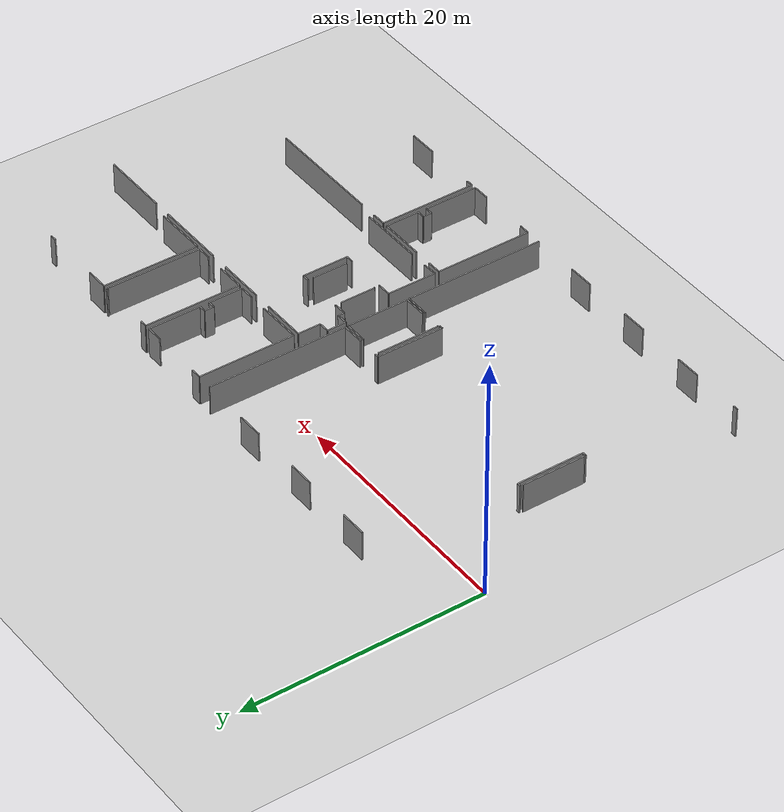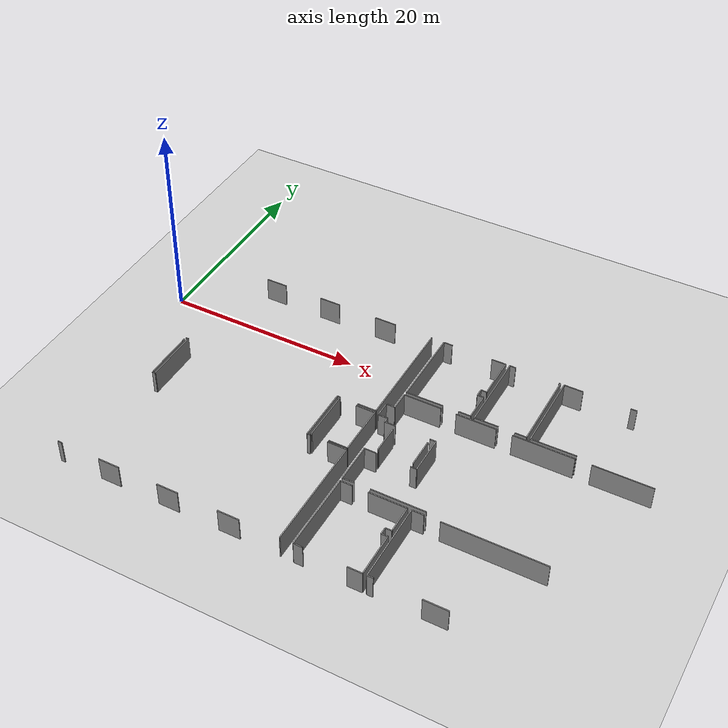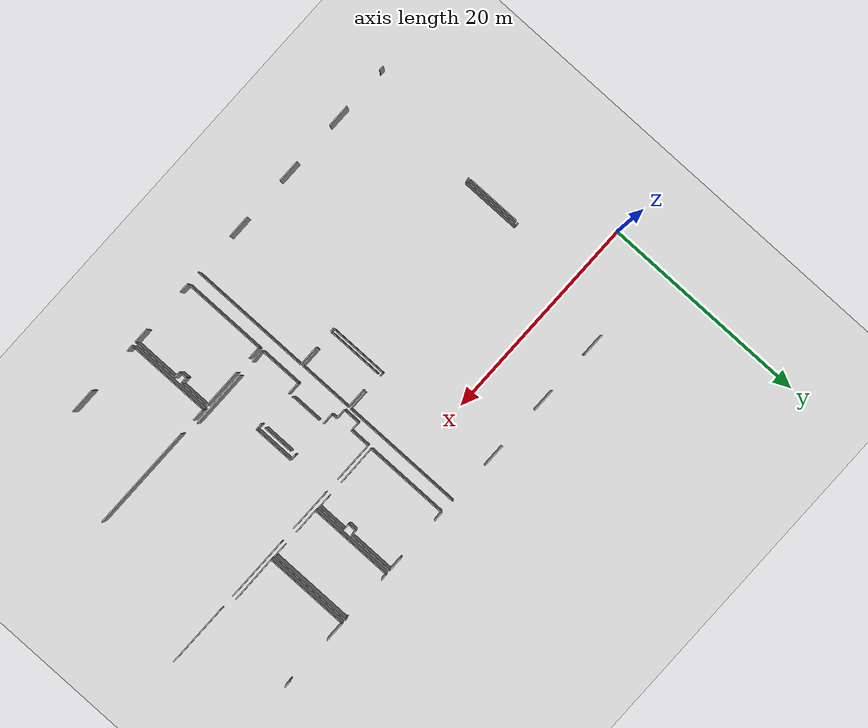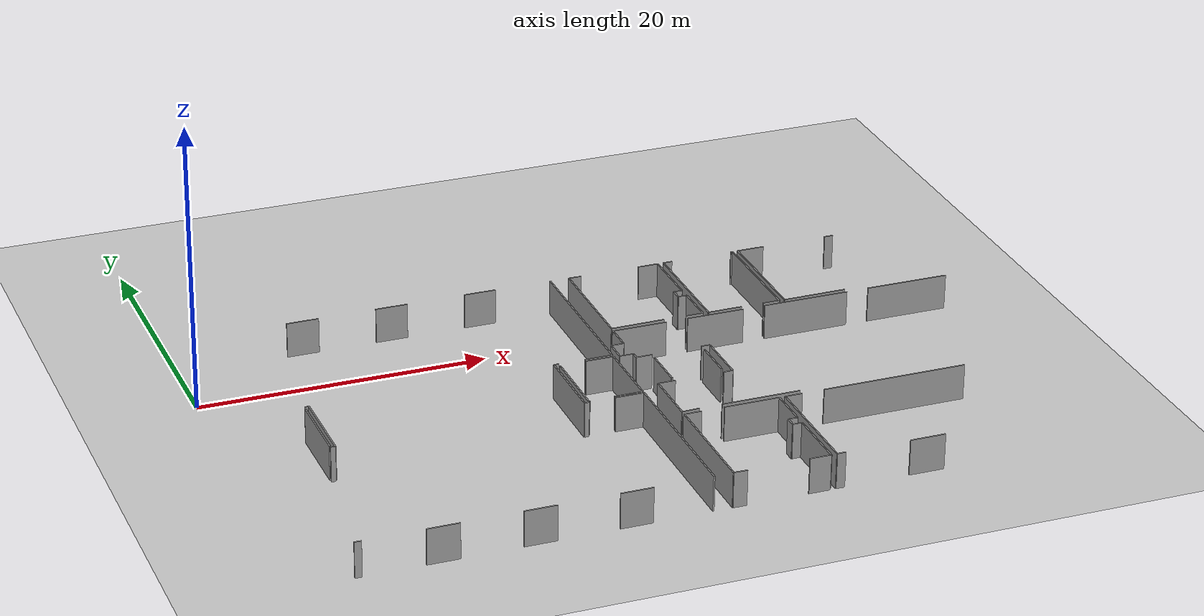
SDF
<sdf version="1.6">
 <world name="default">
  <model name="ground_plane">
   <static>1</static>
   <link name="link">
    <collision name="collision">
     <geometry><plane><normal>0 0 1</normal><size>100 100</size></plane></geometry>
     <surface><friction><ode><mu>100</mu><mu2>50</mu2></ode></friction></surface>
    </collision>
    <visual name="visual">
     <cast_shadows>0</cast_shadows>
     <geometry><plane><normal>0 0 1</normal><size>100 100</size></plane></geometry>
     <material>
      <script><uri>file://media/materials/scripts/gazebo.material</uri><name>Gazebo/Grey</name></script>
     </material>
    </visual>
   </link>
  </model>
  <model name="0510035341_A_40_1_103">
   <static>1</static>
   <link name="Wall_190">
    <collision name="Wall_190_Collision">
     <geometry><box><size>5.22303345819 0.1 2.5</size></box></geometry>
     <pose>2.6115167291 0 1.25 0 0 0</pose>
    </collision>
    <visual name="Wall_190_Visual">
     <pose>2.6115167291 0 1.25 0 0 0</pose>
     <geometry><box><size>5.22303345819 0.1 2.5</size></box></geometry>
     <material>
      <script><uri>file://media/materials/scripts/gazebo.material</uri><name>Gazebo/Grey</name></script>
      <ambient>1 1 1 1</ambient>
     </material>
    </visual>
    <pose>118.19135293 -31.0911053266 0 0 0 -1.57079632679</pose>
   </link>
   <link name="Wall_193">
    <collision name="Wall_193_Collision">
     <geometry><box><size>0.32836010412 0.1 2.5</size></box></geometry>
     <pose>0.16418005206 0 1.25 0 0 0</pose>
    </collision>
    <visual name="Wall_193_Visual">
     <pose>0.16418005206 0 1.25 0 0 0</pose>
     <geometry><box><size>0.32836010412 0.1 2.5</size></box></geometry>
     <material>
      <script><uri>file://media/materials/scripts/gazebo.material</uri><name>Gazebo/Grey</name></script>
      <ambient>1 1 1 1</ambient>
     </material>
    </visual>
    <pose>118.179163228 -36.4789537172 0 0 0 0.0</pose>
   </link>
   <link name="Wall_194">
    <collision name="Wall_194_Collision">
     <geometry><box><size>5.61259602565 0.1 2.5</size></box></geometry>
     <pose>2.80629801282 0 1.25 0 0 0</pose>
    </collision>
    <visual name="Wall_194_Visual">
     <pose>2.80629801282 0 1.25 0 0 0</pose>
     <geometry><box><size>5.61259602565 0.1 2.5</size></box></geometry>
     <material>
      <script><uri>file://media/materials/scripts/gazebo.material</uri><name>Gazebo/Grey</name></script>
      <ambient>1 1 1 1</ambient>
     </material>
    </visual>
    <pose>118.507523332 -36.4789537172 0 0 0 1.57079632679</pose>
   </link>
   <link name="Wall_195">
    <collision name="Wall_195_Collision">
     <geometry><box><size>0.290521236747 0.1 2.5</size></box></geometry>
     <pose>0.145260618373 0 1.25 0 0 0</pose>
    </collision>
    <visual name="Wall_195_Visual">
     <pose>0.145260618373 0 1.25 0 0 0</pose>
     <geometry><box><size>0.290521236747 0.1 2.5</size></box></geometry>
     <material>
      <script><uri>file://media/materials/scripts/gazebo.material</uri><name>Gazebo/Grey</name></script>
      <ambient>1 1 1 1</ambient>
     </material>
    </visual>
    <pose>118.507523332 -30.8663576916 0 0 0 3.14159265359</pose>
   </link>
   <link name="Wall_198">
    <collision name="Wall_198_Collision">
     <geometry><box><size>2.23401688782 0.1 2.5</size></box></geometry>
     <pose>1.11700844391 0 1.25 0 0 0</pose>
    </collision>
    <visual name="Wall_198_Visual">
     <pose>1.11700844391 0 1.25 0 0 0</pose>
     <geometry><box><size>2.23401688782 0.1 2.5</size></box></geometry>
     <material>
      <script><uri>file://media/materials/scripts/gazebo.material</uri><name>Gazebo/Grey</name></script>
      <ambient>1 1 1 1</ambient>
     </material>
    </visual>
    <pose>120.496730366 -19.25007936 0 0 0 0.0</pose>
   </link>
   <link name="Wall_199">
    <collision name="Wall_199_Collision">
     <geometry><box><size>2.23401688782 0.1 2.5</size></box></geometry>
     <pose>1.11700844391 0 1.25 0 0 0</pose>
    </collision>
    <visual name="Wall_199_Visual">
     <pose>1.11700844391 0 1.25 0 0 0</pose>
     <geometry><box><size>2.23401688782 0.1 2.5</size></box></geometry>
     <material>
      <script><uri>file://media/materials/scripts/gazebo.material</uri><name>Gazebo/Grey</name></script>
      <ambient>1 1 1 1</ambient>
     </material>
    </visual>
    <pose>126.759697797 -19.25007936 0 0 0 0.0</pose>
   </link>
   <link name="Wall_200">
    <collision name="Wall_200_Collision">
     <geometry><box><size>2.22893784522 0.1 2.5</size></box></geometry>
     <pose>1.11446892261 0 1.25 0 0 0</pose>
    </collision>
    <visual name="Wall_200_Visual">
     <pose>1.11446892261 0 1.25 0 0 0</pose>
     <geometry><box><size>2.22893784522 0.1 2.5</size></box></geometry>
     <material>
      <script><uri>file://media/materials/scripts/gazebo.material</uri><name>Gazebo/Grey</name></script>
      <ambient>1 1 1 1</ambient>
     </material>
    </visual>
    <pose>133.081582122 -19.25007936 0 0 0 0.0</pose>
   </link>
   <link name="Wall_201">
    <collision name="Wall_201_Collision">
     <geometry><box><size>11.6365945019 0.1 2.5</size></box></geometry>
     <pose>5.81829725097 0 1.25 0 0 0</pose>
    </collision>
    <visual name="Wall_201_Visual">
     <pose>5.81829725097 0 1.25 0 0 0</pose>
     <geometry><box><size>11.6365945019 0.1 2.5</size></box></geometry>
     <material>
      <script><uri>file://media/materials/scripts/gazebo.material</uri><name>Gazebo/Grey</name></script>
      <ambient>1 1 1 1</ambient>
     </material>
    </visual>
    <pose>139.317630627 -19.25007936 0 0 0 -1.57079632679</pose>
   </link>
   <link name="Wall_202">
    <collision name="Wall_202_Collision">
     <geometry><box><size>1.90413307092 0.1 2.5</size></box></geometry>
     <pose>0.952066535458 0 1.25 0 0 0</pose>
    </collision>
    <visual name="Wall_202_Visual">
     <pose>0.952066535458 0 1.25 0 0 0</pose>
     <geometry><box><size>1.90413307092 0.1 2.5</size></box></geometry>
     <material>
      <script><uri>file://media/materials/scripts/gazebo.material</uri><name>Gazebo/Grey</name></script>
      <ambient>1 1 1 1</ambient>
     </material>
    </visual>
    <pose>139.317630627 -30.886673862 0 0 0 3.14159265359</pose>
   </link>
   <link name="Wall_203">
    <collision name="Wall_203_Collision">
     <geometry><box><size>0.340803758492 0.1 2.5</size></box></geometry>
     <pose>0.170401879246 0 1.25 0 0 0</pose>
    </collision>
    <visual name="Wall_203_Visual">
     <pose>0.170401879246 0 1.25 0 0 0</pose>
     <geometry><box><size>0.340803758492 0.1 2.5</size></box></geometry>
     <material>
      <script><uri>file://media/materials/scripts/gazebo.material</uri><name>Gazebo/Grey</name></script>
      <ambient>1 1 1 1</ambient>
     </material>
    </visual>
    <pose>135.577677608 -30.886673862 0 0 0 3.14159265359</pose>
   </link>
   <link name="Wall_204">
    <collision name="Wall_204_Collision">
     <geometry><box><size>5.59837470637 0.1 2.5</size></box></geometry>
     <pose>2.79918735318 0 1.25 0 0 0</pose>
    </collision>
    <visual name="Wall_204_Visual">
     <pose>2.79918735318 0 1.25 0 0 0</pose>
     <geometry><box><size>5.59837470637 0.1 2.5</size></box></geometry>
     <material>
      <script><uri>file://media/materials/scripts/gazebo.material</uri><name>Gazebo/Grey</name></script>
      <ambient>1 1 1 1</ambient>
     </material>
    </visual>
    <pose>135.236873849 -30.886673862 0 0 0 -1.57079632679</pose>
   </link>
   <link name="Wall_205">
    <collision name="Wall_205_Collision">
     <geometry><box><size>0.315662497619 0.1 2.5</size></box></geometry>
     <pose>0.15783124881 0 1.25 0 0 0</pose>
    </collision>
    <visual name="Wall_205_Visual">
     <pose>0.15783124881 0 1.25 0 0 0</pose>
     <geometry><box><size>0.315662497619 0.1 2.5</size></box></geometry>
     <material>
      <script><uri>file://media/materials/scripts/gazebo.material</uri><name>Gazebo/Grey</name></script>
      <ambient>1 1 1 1</ambient>
     </material>
    </visual>
    <pose>135.236873849 -36.4850485683 0 0 0 0.0</pose>
   </link>
   <link name="Wall_206">
    <collision name="Wall_206_Collision">
     <geometry><box><size>1.98412799187 0.1 2.5</size></box></geometry>
     <pose>0.992063995937 0 1.25 0 0 0</pose>
    </collision>
    <visual name="Wall_206_Visual">
     <pose>0.992063995937 0 1.25 0 0 0</pose>
     <geometry><box><size>1.98412799187 0.1 2.5</size></box></geometry>
     <material>
      <script><uri>file://media/materials/scripts/gazebo.material</uri><name>Gazebo/Grey</name></script>
      <ambient>1 1 1 1</ambient>
     </material>
    </visual>
    <pose>137.358135991 -36.4850485683 0 0 0 0.0</pose>
   </link>
   <link name="Wall_207">
    <collision name="Wall_207_Collision">
     <geometry><box><size>11.6612278585 0.1 2.5</size></box></geometry>
     <pose>5.83061392927 0 1.25 0 0 0</pose>
    </collision>
    <visual name="Wall_207_Visual">
     <pose>5.83061392927 0 1.25 0 0 0</pose>
     <geometry><box><size>11.6612278585 0.1 2.5</size></box></geometry>
     <material>
      <script><uri>file://media/materials/scripts/gazebo.material</uri><name>Gazebo/Grey</name></script>
      <ambient>1 1 1 1</ambient>
     </material>
    </visual>
    <pose>139.342263983 -36.4850485683 0 0 0 -1.57079632679</pose>
   </link>
   <link name="Wall_208">
    <collision name="Wall_208_Collision">
     <geometry><box><size>2.20024125452 0.1 2.5</size></box></geometry>
     <pose>1.10012062726 0 1.25 0 0 0</pose>
    </collision>
    <visual name="Wall_208_Visual">
     <pose>1.10012062726 0 1.25 0 0 0</pose>
     <geometry><box><size>2.20024125452 0.1 2.5</size></box></geometry>
     <material>
      <script><uri>file://media/materials/scripts/gazebo.material</uri><name>Gazebo/Grey</name></script>
      <ambient>1 1 1 1</ambient>
     </material>
    </visual>
    <pose>135.324487334 -48.1462764269 0 0 0 3.14159265359</pose>
   </link>
   <link name="Wall_209">
    <collision name="Wall_209_Collision">
     <geometry><box><size>2.18322646181 0.1 2.5</size></box></geometry>
     <pose>1.09161323091 0 1.25 0 0 0</pose>
    </collision>
    <visual name="Wall_209_Visual">
     <pose>1.09161323091 0 1.25 0 0 0</pose>
     <geometry><box><size>2.18322646181 0.1 2.5</size></box></geometry>
     <material>
      <script><uri>file://media/materials/scripts/gazebo.material</uri><name>Gazebo/Grey</name></script>
      <ambient>1 1 1 1</ambient>
     </material>
    </visual>
    <pose>129.014792712 -48.1462764269 0 0 0 3.14159265359</pose>
   </link>
   <link name="Wall_210">
    <collision name="Wall_210_Collision">
     <geometry><box><size>2.18348041394 0.1 2.5</size></box></geometry>
     <pose>1.09174020697 0 1.25 0 0 0</pose>
    </collision>
    <visual name="Wall_210_Visual">
     <pose>1.09174020697 0 1.25 0 0 0</pose>
     <geometry><box><size>2.18348041394 0.1 2.5</size></box></geometry>
     <material>
      <script><uri>file://media/materials/scripts/gazebo.material</uri><name>Gazebo/Grey</name></script>
      <ambient>1 1 1 1</ambient>
     </material>
    </visual>
    <pose>122.74700019 -48.1462764269 0 0 0 3.14159265359</pose>
   </link>
   <link name="Wall_211">
    <collision name="Wall_211_Collision">
     <geometry><box><size>0.466900573723 0.1 2.5</size></box></geometry>
     <pose>0.233450286862 0 1.25 0 0 0</pose>
    </collision>
    <visual name="Wall_211_Visual">
     <pose>0.233450286862 0 1.25 0 0 0</pose>
     <geometry><box><size>0.466900573723 0.1 2.5</size></box></geometry>
     <material>
      <script><uri>file://media/materials/scripts/gazebo.material</uri><name>Gazebo/Grey</name></script>
      <ambient>1 1 1 1</ambient>
     </material>
    </visual>
    <pose>116.479207669 -48.1462764269 0 0 0 3.07954705386</pose>
   </link>
   <link name="Wall_480">
    <collision name="Wall_480_Collision">
     <geometry><box><size>2.95549488921 0.1 2.5</size></box></geometry>
     <pose>1.47774744461 0 1.25 0 0 0</pose>
    </collision>
    <visual name="Wall_480_Visual">
     <pose>1.47774744461 0 1.25 0 0 0</pose>
     <geometry><box><size>2.95549488921 0.1 2.5</size></box></geometry>
     <material>
      <script><uri>file://media/materials/scripts/gazebo.material</uri><name>Gazebo/Grey</name></script>
      <ambient>1 1 1 1</ambient>
     </material>
    </visual>
    <pose>141.787315091 -35.1655133007 0 0 0 1.57079632679</pose>
   </link>
   <link name="Wall_481">
    <collision name="Wall_481_Collision">
     <geometry><box><size>2.94889213383 0.1 2.5</size></box></geometry>
     <pose>1.47444606692 0 1.25 0 0 0</pose>
    </collision>
    <visual name="Wall_481_Visual">
     <pose>1.47444606692 0 1.25 0 0 0</pose>
     <geometry><box><size>2.94889213383 0.1 2.5</size></box></geometry>
     <material>
      <script><uri>file://media/materials/scripts/gazebo.material</uri><name>Gazebo/Grey</name></script>
      <ambient>1 1 1 1</ambient>
     </material>
    </visual>
    <pose>145.319535268 -32.2100184115 0 0 0 -1.57079632679</pose>
   </link>
   <link name="Wall_482">
    <collision name="Wall_482_Collision">
     <geometry><box><size>0.0871022488009 0.1 2.5</size></box></geometry>
     <pose>0.0435511244004 0 1.25 0 0 0</pose>
    </collision>
    <visual name="Wall_482_Visual">
     <pose>0.0435511244004 0 1.25 0 0 0</pose>
     <geometry><box><size>0.0871022488009 0.1 2.5</size></box></geometry>
     <material>
      <script><uri>file://media/materials/scripts/gazebo.material</uri><name>Gazebo/Grey</name></script>
      <ambient>1 1 1 1</ambient>
     </material>
    </visual>
    <pose>141.87416672 -35.1589105454 0 0 0 -3.06571521646</pose>
   </link>
   <link name="Wall_483">
    <collision name="Wall_483_Collision">
     <geometry><box><size>4.107421751 0.1 2.5</size></box></geometry>
     <pose>2.0537108755 0 1.25 0 0 0</pose>
    </collision>
    <visual name="Wall_483_Visual">
     <pose>2.0537108755 0 1.25 0 0 0</pose>
     <geometry><box><size>4.107421751 0.1 2.5</size></box></geometry>
     <material>
      <script><uri>file://media/materials/scripts/gazebo.material</uri><name>Gazebo/Grey</name></script>
      <ambient>1 1 1 1</ambient>
     </material>
    </visual>
    <pose>140.658497873 -39.7209066091 0 0 0 1.57079632679</pose>
   </link>
   <link name="Wall_484">
    <collision name="Wall_484_Collision">
     <geometry><box><size>1.20728842613 0.1 2.5</size></box></geometry>
     <pose>0.603644213066 0 1.25 0 0 0</pose>
    </collision>
    <visual name="Wall_484_Visual">
     <pose>0.603644213066 0 1.25 0 0 0</pose>
     <geometry><box><size>1.20728842613 0.1 2.5</size></box></geometry>
     <material>
      <script><uri>file://media/materials/scripts/gazebo.material</uri><name>Gazebo/Grey</name></script>
      <ambient>1 1 1 1</ambient>
     </material>
    </visual>
    <pose>140.658497873 -35.6134848581 0 0 0 0.0</pose>
   </link>
   <link name="Wall_485">
    <collision name="Wall_485_Collision">
     <geometry><box><size>0.624214335598 0.1 2.5</size></box></geometry>
     <pose>0.312107167799 0 1.25 0 0 0</pose>
    </collision>
    <visual name="Wall_485_Visual">
     <pose>0.312107167799 0 1.25 0 0 0</pose>
     <geometry><box><size>0.624214335598 0.1 2.5</size></box></geometry>
     <material>
      <script><uri>file://media/materials/scripts/gazebo.material</uri><name>Gazebo/Grey</name></script>
      <ambient>1 1 1 1</ambient>
     </material>
    </visual>
    <pose>145.28525173 -35.6134848581 0 0 0 0.0</pose>
   </link>
   <link name="Wall_486">
    <collision name="Wall_486_Collision">
     <geometry><box><size>3.86007237636 0.1 2.5</size></box></geometry>
     <pose>1.93003618818 0 1.25 0 0 0</pose>
    </collision>
    <visual name="Wall_486_Visual">
     <pose>1.93003618818 0 1.25 0 0 0</pose>
     <geometry><box><size>3.86007237636 0.1 2.5</size></box></geometry>
     <material>
      <script><uri>file://media/materials/scripts/gazebo.material</uri><name>Gazebo/Grey</name></script>
      <ambient>1 1 1 1</ambient>
     </material>
    </visual>
    <pose>145.909466066 -35.6134848581 0 0 0 1.57079632679</pose>
   </link>
   <link name="Wall_487">
    <collision name="Wall_487_Collision">
     <geometry><box><size>0.609739064186 0.1 2.5</size></box></geometry>
     <pose>0.304869532093 0 1.25 0 0 0</pose>
    </collision>
    <visual name="Wall_487_Visual">
     <pose>0.304869532093 0 1.25 0 0 0</pose>
     <geometry><box><size>0.609739064186 0.1 2.5</size></box></geometry>
     <material>
      <script><uri>file://media/materials/scripts/gazebo.material</uri><name>Gazebo/Grey</name></script>
      <ambient>1 1 1 1</ambient>
     </material>
    </visual>
    <pose>145.909466066 -31.7534124817 0 0 0 3.14159265359</pose>
   </link>
   <link name="Wall_488">
    <collision name="Wall_488_Collision">
     <geometry><box><size>1.11256428163 0.1 2.5</size></box></geometry>
     <pose>0.556282140816 0 1.25 0 0 0</pose>
    </collision>
    <visual name="Wall_488_Visual">
     <pose>0.556282140816 0 1.25 0 0 0</pose>
     <geometry><box><size>1.11256428163 0.1 2.5</size></box></geometry>
     <material>
      <script><uri>file://media/materials/scripts/gazebo.material</uri><name>Gazebo/Grey</name></script>
      <ambient>1 1 1 1</ambient>
     </material>
    </visual>
    <pose>141.799504793 -31.7534124817 0 0 0 3.14159265359</pose>
   </link>
   <link name="Wall_489">
    <collision name="Wall_489_Collision">
     <geometry><box><size>0.53761665926 0.1 2.5</size></box></geometry>
     <pose>0.26880832963 0 1.25 0 0 0</pose>
    </collision>
    <visual name="Wall_489_Visual">
     <pose>0.26880832963 0 1.25 0 0 0</pose>
     <geometry><box><size>0.53761665926 0.1 2.5</size></box></geometry>
     <material>
      <script><uri>file://media/materials/scripts/gazebo.material</uri><name>Gazebo/Grey</name></script>
      <ambient>1 1 1 1</ambient>
     </material>
    </visual>
    <pose>140.686940512 -31.7534124817 0 0 0 1.57079632679</pose>
   </link>
   <link name="Wall_490">
    <collision name="Wall_490_Collision">
     <geometry><box><size>0.954606056758 0.1 2.5</size></box></geometry>
     <pose>0.477303028379 0 1.25 0 0 0</pose>
    </collision>
    <visual name="Wall_490_Visual">
     <pose>0.477303028379 0 1.25 0 0 0</pose>
     <geometry><box><size>0.954606056758 0.1 2.5</size></box></geometry>
     <material>
      <script><uri>file://media/materials/scripts/gazebo.material</uri><name>Gazebo/Grey</name></script>
      <ambient>1 1 1 1</ambient>
     </material>
    </visual>
    <pose>140.686940512 -31.2157958225 0 0 0 3.14159265359</pose>
   </link>
   <link name="Wall_491">
    <collision name="Wall_491_Collision">
     <geometry><box><size>1.60243794045 0.1 2.5</size></box></geometry>
     <pose>0.801218970224 0 1.25 0 0 0</pose>
    </collision>
    <visual name="Wall_491_Visual">
     <pose>0.801218970224 0 1.25 0 0 0</pose>
     <geometry><box><size>1.60243794045 0.1 2.5</size></box></geometry>
     <material>
      <script><uri>file://media/materials/scripts/gazebo.material</uri><name>Gazebo/Grey</name></script>
      <ambient>1 1 1 1</ambient>
     </material>
    </visual>
    <pose>139.732334455 -31.2157958225 0 0 0 1.57079632679</pose>
   </link>
   <link name="Wall_492">
    <collision name="Wall_492_Collision">
     <geometry><box><size>0.896704971113 0.1 2.5</size></box></geometry>
     <pose>0.448352485556 0 1.25 0 0 0</pose>
    </collision>
    <visual name="Wall_492_Visual">
     <pose>0.448352485556 0 1.25 0 0 0</pose>
     <geometry><box><size>0.896704971113 0.1 2.5</size></box></geometry>
     <material>
      <script><uri>file://media/materials/scripts/gazebo.material</uri><name>Gazebo/Grey</name></script>
      <ambient>1 1 1 1</ambient>
     </material>
    </visual>
    <pose>139.732334455 -29.613357882 0 0 0 0.0</pose>
   </link>
   <link name="Wall_493">
    <collision name="Wall_493_Collision">
     <geometry><box><size>1.90921211352 0.1 2.5</size></box></geometry>
     <pose>0.954606056758 0 1.25 0 0 0</pose>
    </collision>
    <visual name="Wall_493_Visual">
     <pose>0.954606056758 0 1.25 0 0 0</pose>
     <geometry><box><size>1.90921211352 0.1 2.5</size></box></geometry>
     <material>
      <script><uri>file://media/materials/scripts/gazebo.material</uri><name>Gazebo/Grey</name></script>
      <ambient>1 1 1 1</ambient>
     </material>
    </visual>
    <pose>140.629039426 -29.613357882 0 0 0 1.57079632679</pose>
   </link>
   <link name="Wall_494">
    <collision name="Wall_494_Collision">
     <geometry><box><size>3.80572662053 0.1 2.5</size></box></geometry>
     <pose>1.90286331027 0 1.25 0 0 0</pose>
    </collision>
    <visual name="Wall_494_Visual">
     <pose>1.90286331027 0 1.25 0 0 0</pose>
     <geometry><box><size>3.80572662053 0.1 2.5</size></box></geometry>
     <material>
      <script><uri>file://media/materials/scripts/gazebo.material</uri><name>Gazebo/Grey</name></script>
      <ambient>1 1 1 1</ambient>
     </material>
    </visual>
    <pose>140.629039426 -27.7041457685 0 0 0 0.0</pose>
   </link>
   <link name="Wall_495">
    <collision name="Wall_495_Collision">
     <geometry><box><size>4.05129833026 0.1 2.5</size></box></geometry>
     <pose>2.02564916513 0 1.25 0 0 0</pose>
    </collision>
    <visual name="Wall_495_Visual">
     <pose>2.02564916513 0 1.25 0 0 0</pose>
     <geometry><box><size>4.05129833026 0.1 2.5</size></box></geometry>
     <material>
      <script><uri>file://media/materials/scripts/gazebo.material</uri><name>Gazebo/Grey</name></script>
      <ambient>1 1 1 1</ambient>
     </material>
    </visual>
    <pose>145.993016316 -27.7041457685 0 0 0 0.0</pose>
   </link>
   <link name="Wall_496">
    <collision name="Wall_496_Collision">
     <geometry><box><size>6.08393117897 0.1 2.5</size></box></geometry>
     <pose>3.04196558949 0 1.25 0 0 0</pose>
    </collision>
    <visual name="Wall_496_Visual">
     <pose>3.04196558949 0 1.25 0 0 0</pose>
     <geometry><box><size>6.08393117897 0.1 2.5</size></box></geometry>
     <material>
      <script><uri>file://media/materials/scripts/gazebo.material</uri><name>Gazebo/Grey</name></script>
      <ambient>1 1 1 1</ambient>
     </material>
    </visual>
    <pose>151.615770427 -27.7041457685 0 0 0 0.0</pose>
   </link>
   <link name="Wall_497">
    <collision name="Wall_497_Collision">
     <geometry><box><size>5.84597803314 0.1 2.5</size></box></geometry>
     <pose>2.92298901657 0 1.25 0 0 0</pose>
    </collision>
    <visual name="Wall_497_Visual">
     <pose>2.92298901657 0 1.25 0 0 0</pose>
     <geometry><box><size>5.84597803314 0.1 2.5</size></box></geometry>
     <material>
      <script><uri>file://media/materials/scripts/gazebo.material</uri><name>Gazebo/Grey</name></script>
      <ambient>1 1 1 1</ambient>
     </material>
    </visual>
    <pose>159.276490382 -27.7041457685 0 0 0 0.0</pose>
   </link>
   <link name="Wall_503">
    <collision name="Wall_503_Collision">
     <geometry><box><size>5.44549552409 0.1 2.5</size></box></geometry>
     <pose>2.72274776205 0 1.25 0 0 0</pose>
    </collision>
    <visual name="Wall_503_Visual">
     <pose>2.72274776205 0 1.25 0 0 0</pose>
     <geometry><box><size>5.44549552409 0.1 2.5</size></box></geometry>
     <material>
      <script><uri>file://media/materials/scripts/gazebo.material</uri><name>Gazebo/Grey</name></script>
      <ambient>1 1 1 1</ambient>
     </material>
    </visual>
    <pose>148.880452035 -39.6665608533 0 0 0 3.14159265359</pose>
   </link>
   <link name="Wall_504">
    <collision name="Wall_504_Collision">
     <geometry><box><size>1.21536079693 0.1 2.5</size></box></geometry>
     <pose>0.607680398467 0 1.25 0 0 0</pose>
    </collision>
    <visual name="Wall_504_Visual">
     <pose>0.607680398467 0 1.25 0 0 0</pose>
     <geometry><box><size>1.21536079693 0.1 2.5</size></box></geometry>
     <material>
      <script><uri>file://media/materials/scripts/gazebo.material</uri><name>Gazebo/Grey</name></script>
      <ambient>1 1 1 1</ambient>
     </material>
    </visual>
    <pose>141.872643007 -39.6665608533 0 0 0 -3.09686199996</pose>
   </link>
   <link name="Wall_551">
    <collision name="Wall_551_Collision">
     <geometry><box><size>8.05002856961 0.1 2.5</size></box></geometry>
     <pose>4.02501428481 0 1.25 0 0 0</pose>
    </collision>
    <visual name="Wall_551_Visual">
     <pose>4.02501428481 0 1.25 0 0 0</pose>
     <geometry><box><size>8.05002856961 0.1 2.5</size></box></geometry>
     <material>
      <script><uri>file://media/materials/scripts/gazebo.material</uri><name>Gazebo/Grey</name></script>
      <ambient>1 1 1 1</ambient>
     </material>
    </visual>
    <pose>140.668148054 -27.3442956003 0 0 0 1.57079632679</pose>
   </link>
   <link name="Wall_552">
    <collision name="Wall_552_Collision">
     <geometry><box><size>0.898990540283 0.1 2.5</size></box></geometry>
     <pose>0.449495270142 0 1.25 0 0 0</pose>
    </collision>
    <visual name="Wall_552_Visual">
     <pose>0.449495270142 0 1.25 0 0 0</pose>
     <geometry><box><size>0.898990540283 0.1 2.5</size></box></geometry>
     <material>
      <script><uri>file://media/materials/scripts/gazebo.material</uri><name>Gazebo/Grey</name></script>
      <ambient>1 1 1 1</ambient>
     </material>
    </visual>
    <pose>140.668148054 -19.2942670307 0 0 0 0.0</pose>
   </link>
   <link name="Wall_553">
    <collision name="Wall_553_Collision">
     <geometry><box><size>1.43609929528 0.1 2.5</size></box></geometry>
     <pose>0.718049647641 0 1.25 0 0 0</pose>
    </collision>
    <visual name="Wall_553_Visual">
     <pose>0.718049647641 0 1.25 0 0 0</pose>
     <geometry><box><size>1.43609929528 0.1 2.5</size></box></geometry>
     <material>
      <script><uri>file://media/materials/scripts/gazebo.material</uri><name>Gazebo/Grey</name></script>
      <ambient>1 1 1 1</ambient>
     </material>
    </visual>
    <pose>145.792648086 -19.2942670307 0 0 0 0.0</pose>
   </link>
   <link name="Wall_554">
    <collision name="Wall_554_Collision">
     <geometry><box><size>4.37508729604 0.1 2.5</size></box></geometry>
     <pose>2.18754364802 0 1.25 0 0 0</pose>
    </collision>
    <visual name="Wall_554_Visual">
     <pose>2.18754364802 0 1.25 0 0 0</pose>
     <geometry><box><size>4.37508729604 0.1 2.5</size></box></geometry>
     <material>
      <script><uri>file://media/materials/scripts/gazebo.material</uri><name>Gazebo/Grey</name></script>
      <ambient>1 1 1 1</ambient>
     </material>
    </visual>
    <pose>147.228747381 -19.2942670307 0 0 0 -1.57079632679</pose>
   </link>
   <link name="Wall_555">
    <collision name="Wall_555_Collision">
     <geometry><box><size>0.581042473494 0.1 2.5</size></box></geometry>
     <pose>0.290521236747 0 1.25 0 0 0</pose>
    </collision>
    <visual name="Wall_555_Visual">
     <pose>0.290521236747 0 1.25 0 0 0</pose>
     <geometry><box><size>0.581042473494 0.1 2.5</size></box></geometry>
     <material>
      <script><uri>file://media/materials/scripts/gazebo.material</uri><name>Gazebo/Grey</name></script>
      <ambient>1 1 1 1</ambient>
     </material>
    </visual>
    <pose>147.228747381 -23.6693543267 0 0 0 3.14159265359</pose>
   </link>
   <link name="Wall_556">
    <collision name="Wall_556_Collision">
     <geometry><box><size>0.796901784014 0.1 2.5</size></box></geometry>
     <pose>0.398450892007 0 1.25 0 0 0</pose>
    </collision>
    <visual name="Wall_556_Visual">
     <pose>0.398450892007 0 1.25 0 0 0</pose>
     <geometry><box><size>0.796901784014 0.1 2.5</size></box></geometry>
     <material>
      <script><uri>file://media/materials/scripts/gazebo.material</uri><name>Gazebo/Grey</name></script>
      <ambient>1 1 1 1</ambient>
     </material>
    </visual>
    <pose>146.647704908 -23.6693543267 0 0 0 -1.57079632679</pose>
   </link>
   <link name="Wall_557">
    <collision name="Wall_557_Collision">
     <geometry><box><size>0.614310202527 0.1 2.5</size></box></geometry>
     <pose>0.307155101263 0 1.25 0 0 0</pose>
    </collision>
    <visual name="Wall_557_Visual">
     <pose>0.307155101263 0 1.25 0 0 0</pose>
     <geometry><box><size>0.614310202527 0.1 2.5</size></box></geometry>
     <material>
      <script><uri>file://media/materials/scripts/gazebo.material</uri><name>Gazebo/Grey</name></script>
      <ambient>1 1 1 1</ambient>
     </material>
    </visual>
    <pose>146.647704908 -24.4662561107 0 0 0 0.0</pose>
   </link>
   <link name="Wall_558">
    <collision name="Wall_558_Collision">
     <geometry><box><size>2.83283601041 0.1 2.5</size></box></geometry>
     <pose>1.41641800521 0 1.25 0 0 0</pose>
    </collision>
    <visual name="Wall_558_Visual">
     <pose>1.41641800521 0 1.25 0 0 0</pose>
     <geometry><box><size>2.83283601041 0.1 2.5</size></box></geometry>
     <material>
      <script><uri>file://media/materials/scripts/gazebo.material</uri><name>Gazebo/Grey</name></script>
      <ambient>1 1 1 1</ambient>
     </material>
    </visual>
    <pose>147.26201511 -24.4662561107 0 0 0 -1.57079632679</pose>
   </link>
   <link name="Wall_559">
    <collision name="Wall_559_Collision">
     <geometry><box><size>1.2248111231 0.1 2.5</size></box></geometry>
     <pose>0.612405561552 0 1.25 0 0 0</pose>
    </collision>
    <visual name="Wall_559_Visual">
     <pose>0.612405561552 0 1.25 0 0 0</pose>
     <geometry><box><size>1.2248111231 0.1 2.5</size></box></geometry>
     <material>
      <script><uri>file://media/materials/scripts/gazebo.material</uri><name>Gazebo/Grey</name></script>
      <ambient>1 1 1 1</ambient>
     </material>
    </visual>
    <pose>147.26201511 -27.2990921211 0 0 0 3.14159265359</pose>
   </link>
   <link name="Wall_560">
    <collision name="Wall_560_Collision">
     <geometry><box><size>3.78593427321 0.1 2.5</size></box></geometry>
     <pose>1.89296713661 0 1.25 0 0 0</pose>
    </collision>
    <visual name="Wall_560_Visual">
     <pose>1.89296713661 0 1.25 0 0 0</pose>
     <geometry><box><size>3.78593427321 0.1 2.5</size></box></geometry>
     <material>
      <script><uri>file://media/materials/scripts/gazebo.material</uri><name>Gazebo/Grey</name></script>
      <ambient>1 1 1 1</ambient>
     </material>
    </visual>
    <pose>144.453812456 -27.2990921211 0 0 0 -3.12965252204</pose>
   </link>
   <link name="Wall_561">
    <collision name="Wall_561_Collision">
     <geometry><box><size>8.05536156435 0.1 2.5</size></box></geometry>
     <pose>4.02768078217 0 1.25 0 0 0</pose>
    </collision>
    <visual name="Wall_561_Visual">
     <pose>4.02768078217 0 1.25 0 0 0</pose>
     <geometry><box><size>8.05536156435 0.1 2.5</size></box></geometry>
     <material>
      <script><uri>file://media/materials/scripts/gazebo.material</uri><name>Gazebo/Grey</name></script>
      <ambient>1 1 1 1</ambient>
     </material>
    </visual>
    <pose>147.660719954 -27.343787696 0 0 0 1.57079632679</pose>
   </link>
   <link name="Wall_562">
    <collision name="Wall_562_Collision">
     <geometry><box><size>0.618627388737 0.1 2.5</size></box></geometry>
     <pose>0.309313694369 0 1.25 0 0 0</pose>
    </collision>
    <visual name="Wall_562_Visual">
     <pose>0.309313694369 0 1.25 0 0 0</pose>
     <geometry><box><size>0.618627388737 0.1 2.5</size></box></geometry>
     <material>
      <script><uri>file://media/materials/scripts/gazebo.material</uri><name>Gazebo/Grey</name></script>
      <ambient>1 1 1 1</ambient>
     </material>
    </visual>
    <pose>147.660719954 -19.2884261317 0 0 0 0.0</pose>
   </link>
   <link name="Wall_563">
    <collision name="Wall_563_Collision">
     <geometry><box><size>0.151609421624 0.1 2.5</size></box></geometry>
     <pose>0.075804710812 0 1.25 0 0 0</pose>
    </collision>
    <visual name="Wall_563_Visual">
     <pose>0.075804710812 0 1.25 0 0 0</pose>
     <geometry><box><size>0.151609421624 0.1 2.5</size></box></geometry>
     <material>
      <script><uri>file://media/materials/scripts/gazebo.material</uri><name>Gazebo/Grey</name></script>
      <ambient>1 1 1 1</ambient>
     </material>
    </visual>
    <pose>152.698368358 -19.2884261317 0 0 0 0.0</pose>
   </link>
   <link name="Wall_564">
    <collision name="Wall_564_Collision">
     <geometry><box><size>8.03402958542 0.1 2.5</size></box></geometry>
     <pose>4.01701479271 0 1.25 0 0 0</pose>
    </collision>
    <visual name="Wall_564_Visual">
     <pose>4.01701479271 0 1.25 0 0 0</pose>
     <geometry><box><size>8.03402958542 0.1 2.5</size></box></geometry>
     <material>
      <script><uri>file://media/materials/scripts/gazebo.material</uri><name>Gazebo/Grey</name></script>
      <ambient>1 1 1 1</ambient>
     </material>
    </visual>
    <pose>152.849977779 -19.2884261317 0 0 0 -1.57079632679</pose>
   </link>
   <link name="Wall_565">
    <collision name="Wall_565_Collision">
     <geometry><box><size>1.16970351089 0.1 2.5</size></box></geometry>
     <pose>0.584851755444 0 1.25 0 0 0</pose>
    </collision>
    <visual name="Wall_565_Visual">
     <pose>0.584851755444 0 1.25 0 0 0</pose>
     <geometry><box><size>1.16970351089 0.1 2.5</size></box></geometry>
     <material>
      <script><uri>file://media/materials/scripts/gazebo.material</uri><name>Gazebo/Grey</name></script>
      <ambient>1 1 1 1</ambient>
     </material>
    </visual>
    <pose>152.849977779 -27.3224557171 0 0 0 3.14159265359</pose>
   </link>
   <link name="Wall_566">
    <collision name="Wall_566_Collision">
     <geometry><box><size>2.40552916231 0.1 2.5</size></box></geometry>
     <pose>1.20276458116 0 1.25 0 0 0</pose>
    </collision>
    <visual name="Wall_566_Visual">
     <pose>1.20276458116 0 1.25 0 0 0</pose>
     <geometry><box><size>2.40552916231 0.1 2.5</size></box></geometry>
     <material>
      <script><uri>file://media/materials/scripts/gazebo.material</uri><name>Gazebo/Grey</name></script>
      <ambient>1 1 1 1</ambient>
     </material>
    </visual>
    <pose>150.06615453 -27.3224557171 0 0 0 -3.13272464282</pose>
   </link>
   <link name="Wall_567">
    <collision name="Wall_567_Collision">
     <geometry><box><size>8.06805917085 0.1 2.5</size></box></geometry>
     <pose>4.03402958542 0 1.25 0 0 0</pose>
    </collision>
    <visual name="Wall_567_Visual">
     <pose>4.03402958542 0 1.25 0 0 0</pose>
     <geometry><box><size>8.06805917085 0.1 2.5</size></box></geometry>
     <material>
      <script><uri>file://media/materials/scripts/gazebo.material</uri><name>Gazebo/Grey</name></script>
      <ambient>1 1 1 1</ambient>
     </material>
    </visual>
    <pose>153.228874357 -27.3564853025 0 0 0 1.57079632679</pose>
   </link>
   <link name="Wall_568">
    <collision name="Wall_568_Collision">
     <geometry><box><size>1.91911624659 0.1 2.5</size></box></geometry>
     <pose>0.959558123294 0 1.25 0 0 0</pose>
    </collision>
    <visual name="Wall_568_Visual">
     <pose>0.959558123294 0 1.25 0 0 0</pose>
     <geometry><box><size>1.91911624659 0.1 2.5</size></box></geometry>
     <material>
      <script><uri>file://media/materials/scripts/gazebo.material</uri><name>Gazebo/Grey</name></script>
      <ambient>1 1 1 1</ambient>
     </material>
    </visual>
    <pose>153.228874357 -19.2884261317 0 0 0 0.0</pose>
   </link>
   <link name="Wall_569">
    <collision name="Wall_569_Collision">
     <geometry><box><size>0.618627388737 0.1 2.5</size></box></geometry>
     <pose>0.309313694369 0 1.25 0 0 0</pose>
    </collision>
    <visual name="Wall_569_Visual">
     <pose>0.309313694369 0 1.25 0 0 0</pose>
     <geometry><box><size>0.618627388737 0.1 2.5</size></box></geometry>
     <material>
      <script><uri>file://media/materials/scripts/gazebo.material</uri><name>Gazebo/Grey</name></script>
      <ambient>1 1 1 1</ambient>
     </material>
    </visual>
    <pose>159.844835249 -19.2884261317 0 0 0 0.0</pose>
   </link>
   <link name="Wall_572">
    <collision name="Wall_572_Collision">
     <geometry><box><size>4.47098737091 0.1 2.5</size></box></geometry>
     <pose>2.23549368546 0 1.25 0 0 0</pose>
    </collision>
    <visual name="Wall_572_Visual">
     <pose>2.23549368546 0 1.25 0 0 0</pose>
     <geometry><box><size>4.47098737091 0.1 2.5</size></box></geometry>
     <material>
      <script><uri>file://media/materials/scripts/gazebo.material</uri><name>Gazebo/Grey</name></script>
      <ambient>1 1 1 1</ambient>
     </material>
    </visual>
    <pose>157.699701606 -27.3186464351 0 0 0 -3.13312935098</pose>
   </link>
   <link name="Wall_732">
    <collision name="Wall_732_Collision">
     <geometry><box><size>8.0482509047 0.1 2.5</size></box></geometry>
     <pose>4.02412545235 0 1.25 0 0 0</pose>
    </collision>
    <visual name="Wall_732_Visual">
     <pose>4.02412545235 0 1.25 0 0 0</pose>
     <geometry><box><size>8.0482509047 0.1 2.5</size></box></geometry>
     <material>
      <script><uri>file://media/materials/scripts/gazebo.material</uri><name>Gazebo/Grey</name></script>
      <ambient>1 1 1 1</ambient>
     </material>
    </visual>
    <pose>147.66503714 -48.1229128309 0 0 0 1.57079632679</pose>
   </link>
   <link name="Wall_733">
    <collision name="Wall_733_Collision">
     <geometry><box><size>1.2044949527 0.1 2.5</size></box></geometry>
     <pose>0.602247476351 0 1.25 0 0 0</pose>
    </collision>
    <visual name="Wall_733_Visual">
     <pose>0.602247476351 0 1.25 0 0 0</pose>
     <geometry><box><size>1.2044949527 0.1 2.5</size></box></geometry>
     <material>
      <script><uri>file://media/materials/scripts/gazebo.material</uri><name>Gazebo/Grey</name></script>
      <ambient>1 1 1 1</ambient>
     </material>
    </visual>
    <pose>147.66503714 -40.0746619262 0 0 0 0.0</pose>
   </link>
   <link name="Wall_734">
    <collision name="Wall_734_Collision">
     <geometry><box><size>10.0476160244 0.1 2.5</size></box></geometry>
     <pose>5.02380801219 0 1.25 0 0 0</pose>
    </collision>
    <visual name="Wall_734_Visual">
     <pose>5.02380801219 0 1.25 0 0 0</pose>
     <geometry><box><size>10.0476160244 0.1 2.5</size></box></geometry>
     <material>
      <script><uri>file://media/materials/scripts/gazebo.material</uri><name>Gazebo/Grey</name></script>
      <ambient>1 1 1 1</ambient>
     </material>
    </visual>
    <pose>150.41076757 -40.0746619262 0 0 0 0.0</pose>
   </link>
   <link name="Wall_737">
    <collision name="Wall_737_Collision">
     <geometry><box><size>2.4326074535 0.1 2.5</size></box></geometry>
     <pose>1.21630372675 0 1.25 0 0 0</pose>
    </collision>
    <visual name="Wall_737_Visual">
     <pose>1.21630372675 0 1.25 0 0 0</pose>
     <geometry><box><size>2.4326074535 0.1 2.5</size></box></geometry>
     <material>
      <script><uri>file://media/materials/scripts/gazebo.material</uri><name>Gazebo/Grey</name></script>
      <ambient>1 1 1 1</ambient>
     </material>
    </visual>
    <pose>155.154339407 -48.1206272618 0 0 0 3.14159265359</pose>
   </link>
   <link name="Wall_738">
    <collision name="Wall_738_Collision">
     <geometry><box><size>0.595268180584 0.1 2.5</size></box></geometry>
     <pose>0.297634090292 0 1.25 0 0 0</pose>
    </collision>
    <visual name="Wall_738_Visual">
     <pose>0.297634090292 0 1.25 0 0 0</pose>
     <geometry><box><size>0.595268180584 0.1 2.5</size></box></geometry>
     <material>
      <script><uri>file://media/materials/scripts/gazebo.material</uri><name>Gazebo/Grey</name></script>
      <ambient>1 1 1 1</ambient>
     </material>
    </visual>
    <pose>148.260300933 -48.1206272618 0 0 0 -3.13775308201</pose>
   </link>
   <link name="Wall_739">
    <collision name="Wall_739_Collision">
     <geometry><box><size>8.04291790997 0.1 2.5</size></box></geometry>
     <pose>4.02145895499 0 1.25 0 0 0</pose>
    </collision>
    <visual name="Wall_739_Visual">
     <pose>4.02145895499 0 1.25 0 0 0</pose>
     <geometry><box><size>8.04291790997 0.1 2.5</size></box></geometry>
     <material>
      <script><uri>file://media/materials/scripts/gazebo.material</uri><name>Gazebo/Grey</name></script>
      <ambient>1 1 1 1</ambient>
     </material>
    </visual>
    <pose>140.653418831 -48.1135166021 0 0 0 1.57079632679</pose>
   </link>
   <link name="Wall_740">
    <collision name="Wall_740_Collision">
     <geometry><box><size>1.2121135166 0.1 2.5</size></box></geometry>
     <pose>0.606056758301 0 1.25 0 0 0</pose>
    </collision>
    <visual name="Wall_740_Visual">
     <pose>0.606056758301 0 1.25 0 0 0</pose>
     <geometry><box><size>1.2121135166 0.1 2.5</size></box></geometry>
     <material>
      <script><uri>file://media/materials/scripts/gazebo.material</uri><name>Gazebo/Grey</name></script>
      <ambient>1 1 1 1</ambient>
     </material>
    </visual>
    <pose>140.653418831 -40.0705986921 0 0 0 0.0</pose>
   </link>
   <link name="Wall_741">
    <collision name="Wall_741_Collision">
     <geometry><box><size>3.8232493175 0.1 2.5</size></box></geometry>
     <pose>1.91162465875 0 1.25 0 0 0</pose>
    </collision>
    <visual name="Wall_741_Visual">
     <pose>1.91162465875 0 1.25 0 0 0</pose>
     <geometry><box><size>3.8232493175 0.1 2.5</size></box></geometry>
     <material>
      <script><uri>file://media/materials/scripts/gazebo.material</uri><name>Gazebo/Grey</name></script>
      <ambient>1 1 1 1</ambient>
     </material>
    </visual>
    <pose>143.441051362 -40.0705986921 0 0 0 0.0</pose>
   </link>
   <link name="Wall_742">
    <collision name="Wall_742_Collision">
     <geometry><box><size>2.86305631388 0.1 2.5</size></box></geometry>
     <pose>1.43152815694 0 1.25 0 0 0</pose>
    </collision>
    <visual name="Wall_742_Visual">
     <pose>1.43152815694 0 1.25 0 0 0</pose>
     <geometry><box><size>2.86305631388 0.1 2.5</size></box></geometry>
     <material>
      <script><uri>file://media/materials/scripts/gazebo.material</uri><name>Gazebo/Grey</name></script>
      <ambient>1 1 1 1</ambient>
     </material>
    </visual>
    <pose>147.264300679 -40.0705986921 0 0 0 -1.57079632679</pose>
   </link>
   <link name="Wall_743">
    <collision name="Wall_743_Collision">
     <geometry><box><size>0.643260745349 0.1 2.5</size></box></geometry>
     <pose>0.321630372675 0 1.25 0 0 0</pose>
    </collision>
    <visual name="Wall_743_Visual">
     <pose>0.321630372675 0 1.25 0 0 0</pose>
     <geometry><box><size>0.643260745349 0.1 2.5</size></box></geometry>
     <material>
      <script><uri>file://media/materials/scripts/gazebo.material</uri><name>Gazebo/Grey</name></script>
      <ambient>1 1 1 1</ambient>
     </material>
    </visual>
    <pose>147.264300679 -42.933655006 0 0 0 3.14159265359</pose>
   </link>
   <link name="Wall_744">
    <collision name="Wall_744_Collision">
     <geometry><box><size>0.726049139737 0.1 2.5</size></box></geometry>
     <pose>0.363024569869 0 1.25 0 0 0</pose>
    </collision>
    <visual name="Wall_744_Visual">
     <pose>0.363024569869 0 1.25 0 0 0</pose>
     <geometry><box><size>0.726049139737 0.1 2.5</size></box></geometry>
     <material>
      <script><uri>file://media/materials/scripts/gazebo.material</uri><name>Gazebo/Grey</name></script>
      <ambient>1 1 1 1</ambient>
     </material>
    </visual>
    <pose>146.621039934 -42.933655006 0 0 0 -1.57079632679</pose>
   </link>
   <link name="Wall_745">
    <collision name="Wall_745_Collision">
     <geometry><box><size>0.638943559139 0.1 2.5</size></box></geometry>
     <pose>0.31947177957 0 1.25 0 0 0</pose>
    </collision>
    <visual name="Wall_745_Visual">
     <pose>0.31947177957 0 1.25 0 0 0</pose>
     <geometry><box><size>0.638943559139 0.1 2.5</size></box></geometry>
     <material>
      <script><uri>file://media/materials/scripts/gazebo.material</uri><name>Gazebo/Grey</name></script>
      <ambient>1 1 1 1</ambient>
     </material>
    </visual>
    <pose>146.621039934 -43.6597041458 0 0 0 0.0</pose>
   </link>
   <link name="Wall_746">
    <collision name="Wall_746_Collision">
     <geometry><box><size>4.46625611072 0.1 2.5</size></box></geometry>
     <pose>2.23312805536 0 1.25 0 0 0</pose>
    </collision>
    <visual name="Wall_746_Visual">
     <pose>2.23312805536 0 1.25 0 0 0</pose>
     <geometry><box><size>4.46625611072 0.1 2.5</size></box></geometry>
     <material>
      <script><uri>file://media/materials/scripts/gazebo.material</uri><name>Gazebo/Grey</name></script>
      <ambient>1 1 1 1</ambient>
     </material>
    </visual>
    <pose>147.259983493 -43.6597041458 0 0 0 -1.57079632679</pose>
   </link>
   <link name="Wall_747">
    <collision name="Wall_747_Collision">
     <geometry><box><size>1.45514570503 0.1 2.5</size></box></geometry>
     <pose>0.727572852517 0 1.25 0 0 0</pose>
    </collision>
    <visual name="Wall_747_Visual">
     <pose>0.727572852517 0 1.25 0 0 0</pose>
     <geometry><box><size>1.45514570503 0.1 2.5</size></box></geometry>
     <material>
      <script><uri>file://media/materials/scripts/gazebo.material</uri><name>Gazebo/Grey</name></script>
      <ambient>1 1 1 1</ambient>
     </material>
    </visual>
    <pose>147.259983493 -48.1259602565 0 0 0 3.14159265359</pose>
   </link>
   <link name="Wall_748">
    <collision name="Wall_748_Collision">
     <geometry><box><size>0.934372750182 0.1 2.5</size></box></geometry>
     <pose>0.467186375091 0 1.25 0 0 0</pose>
    </collision>
    <visual name="Wall_748_Visual">
     <pose>0.467186375091 0 1.25 0 0 0</pose>
     <geometry><box><size>0.934372750182 0.1 2.5</size></box></geometry>
     <material>
      <script><uri>file://media/materials/scripts/gazebo.material</uri><name>Gazebo/Grey</name></script>
      <ambient>1 1 1 1</ambient>
     </material>
    </visual>
    <pose>141.587708717 -48.1259602565 0 0 0 3.12827460441</pose>
   </link>
   <link name="Wall_749">
    <collision name="Wall_749_Collision">
     <geometry><box><size>5.23954034664 0.1 2.5</size></box></geometry>
     <pose>2.61977017332 0 1.25 0 0 0</pose>
    </collision>
    <visual name="Wall_749_Visual">
     <pose>2.61977017332 0 1.25 0 0 0</pose>
     <geometry><box><size>5.23954034664 0.1 2.5</size></box></geometry>
     <material>
      <script><uri>file://media/materials/scripts/gazebo.material</uri><name>Gazebo/Grey</name></script>
      <ambient>1 1 1 1</ambient>
     </material>
    </visual>
    <pose>135.571074852 -36.3639134023 0 0 0 1.57079632679</pose>
   </link>
   <link name="Wall_750">
    <collision name="Wall_750_Collision">
     <geometry><box><size>1.93689289569 0.1 2.5</size></box></geometry>
     <pose>0.968446447845 0 1.25 0 0 0</pose>
    </collision>
    <visual name="Wall_750_Visual">
     <pose>0.968446447845 0 1.25 0 0 0</pose>
     <geometry><box><size>1.93689289569 0.1 2.5</size></box></geometry>
     <material>
      <script><uri>file://media/materials/scripts/gazebo.material</uri><name>Gazebo/Grey</name></script>
      <ambient>1 1 1 1</ambient>
     </material>
    </visual>
    <pose>137.379214018 -31.1243730557 0 0 0 0.0</pose>
   </link>
   <link name="Wall_751">
    <collision name="Wall_751_Collision">
     <geometry><box><size>5.17884578757 0.1 2.5</size></box></geometry>
     <pose>2.58942289378 0 1.25 0 0 0</pose>
    </collision>
    <visual name="Wall_751_Visual">
     <pose>2.58942289378 0 1.25 0 0 0</pose>
     <geometry><box><size>5.17884578757 0.1 2.5</size></box></geometry>
     <material>
      <script><uri>file://media/materials/scripts/gazebo.material</uri><name>Gazebo/Grey</name></script>
      <ambient>1 1 1 1</ambient>
     </material>
    </visual>
    <pose>139.316106914 -31.1243730557 0 0 0 -1.57079632679</pose>
   </link>
   <link name="Wall_752">
    <collision name="Wall_752_Collision">
     <geometry><box><size>1.94171798616 0.1 2.5</size></box></geometry>
     <pose>0.97085899308 0 1.25 0 0 0</pose>
    </collision>
    <visual name="Wall_752_Visual">
     <pose>0.97085899308 0 1.25 0 0 0</pose>
     <geometry><box><size>1.94171798616 0.1 2.5</size></box></geometry>
     <material>
      <script><uri>file://media/materials/scripts/gazebo.material</uri><name>Gazebo/Grey</name></script>
      <ambient>1 1 1 1</ambient>
     </material>
    </visual>
    <pose>139.316106914 -36.3032188432 0 0 0 3.14159265359</pose>
   </link>
   <link name="Wall_753">
    <collision name="Wall_753_Collision">
     <geometry><box><size>0.0917614477395 0.1 2.5</size></box></geometry>
     <pose>0.0458807238698 0 1.25 0 0 0</pose>
    </collision>
    <visual name="Wall_753_Visual">
     <pose>0.0458807238698 0 1.25 0 0 0</pose>
     <geometry><box><size>0.0917614477395 0.1 2.5</size></box></geometry>
     <material>
      <script><uri>file://media/materials/scripts/gazebo.material</uri><name>Gazebo/Grey</name></script>
      <ambient>1 1 1 1</ambient>
     </material>
    </visual>
    <pose>135.63989588 -36.3032188432 0 0 0 -2.41885744081</pose>
   </link>
   <pose>-112.9 24.0688781665 0 0 0 0</pose>
  </model>
 </world>
</sdf>
